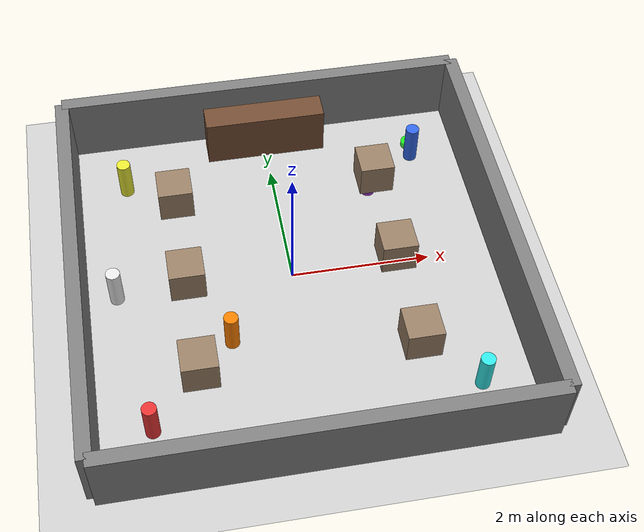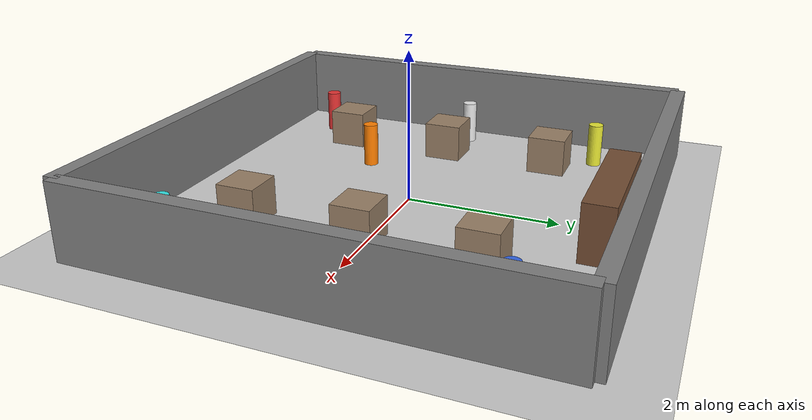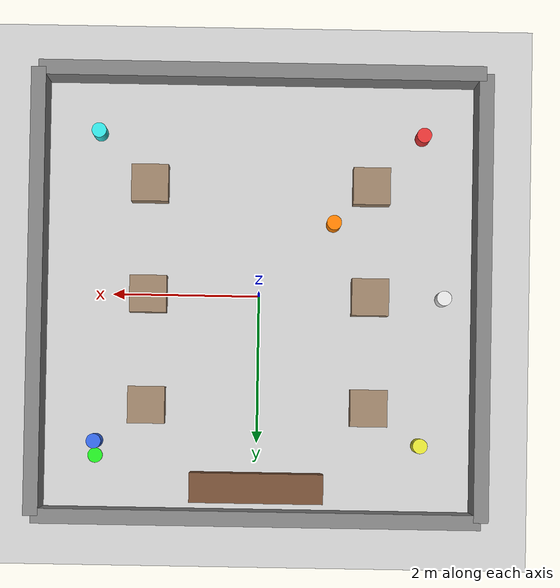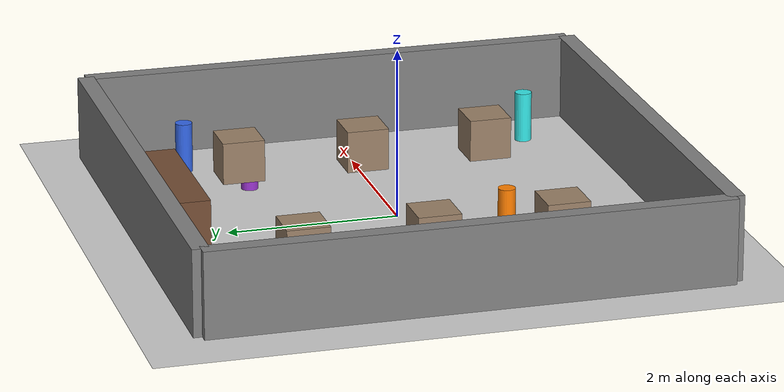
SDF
<?xml version="1.0" ?>
<sdf version="1.6">
  <world name="stage5_restaurant">
    <!-- Stage 5: Restaurant-like environment with tables and moving people -->

    <include>
      <uri>model://sun</uri>
    </include>

    <include>
      <uri>model://ground_plane</uri>
    </include>

    <physics type="ode">
      <real_time_update_rate>1000.0</real_time_update_rate>
      <max_step_size>0.002</max_step_size>
      <real_time_factor>3</real_time_factor>
      <ode>
        <solver>
          <type>quick</type>
          <iters>20</iters>
          <sor>1.3</sor>
        </solver>
        <constraints>
          <cfm>0.00001</cfm>
          <erp>0.2</erp>
          <contact_max_correcting_vel>2000.000000</contact_max_correcting_vel>
          <contact_surface_layer>0.01000</contact_surface_layer>
        </constraints>
      </ode>
    </physics>

    <scene>
      <ambient>0.4 0.4 0.4 1</ambient>
      <background>0.7 0.7 0.7 1</background>
      <shadows>false</shadows>
    </scene>

    <gui fullscreen='0'>
      <camera name='user_camera'>
        <pose>0 -10 9 0 0.7 1.57</pose>
        <view_controller>orbit</view_controller>
      </camera>
    </gui>

    <!-- BOUNDED ARENA: 6x6 meter box made of walls -->

    <model name="wall_north">
      <static>true</static>
      <pose>0 3 0.5 0 0 0</pose>
      <link name="link">
        <collision name="collision">
          <geometry>
            <box>
              <size>6 0.2 1</size>
            </box>
          </geometry>
        </collision>
        <visual name="visual">
          <geometry>
            <box>
              <size>6 0.2 1</size>
            </box>
          </geometry>
          <material>
            <ambient>0.5 0.5 0.5 1</ambient>
            <diffuse>0.5 0.5 0.5 1</diffuse>
          </material>
        </visual>
      </link>
    </model>

    <model name="wall_south">
      <static>true</static>
      <pose>0 -3 0.5 0 0 0</pose>
      <link name="link">
        <collision name="collision">
          <geometry>
            <box>
              <size>6 0.2 1</size>
            </box>
          </geometry>
        </collision>
        <visual name="visual">
          <geometry>
            <box>
              <size>6 0.2 1</size>
            </box>
          </geometry>
          <material>
            <ambient>0.5 0.5 0.5 1</ambient>
            <diffuse>0.5 0.5 0.5 1</diffuse>
          </material>
        </visual>
      </link>
    </model>

    <model name="wall_east">
      <static>true</static>
      <pose>3 0 0.5 0 0 0</pose>
      <link name="link">
        <collision name="collision">
          <geometry>
            <box>
              <size>0.2 6 1</size>
            </box>
          </geometry>
        </collision>
        <visual name="visual">
          <geometry>
            <box>
              <size>0.2 6 1</size>
            </box>
          </geometry>
          <material>
            <ambient>0.5 0.5 0.5 1</ambient>
            <diffuse>0.5 0.5 0.5 1</diffuse>
          </material>
        </visual>
      </link>
    </model>

    <model name="wall_west">
      <static>true</static>
      <pose>-3 0 0.5 0 0 0</pose>
      <link name="link">
        <collision name="collision">
          <geometry>
            <box>
              <size>0.2 6 1</size>
            </box>
          </geometry>
        </collision>
        <visual name="visual">
          <geometry>
            <box>
              <size>0.2 6 1</size>
            </box>
          </geometry>
          <material>
            <ambient>0.5 0.5 0.5 1</ambient>
            <diffuse>0.5 0.5 0.5 1</diffuse>
          </material>
        </visual>
      </link>
    </model>

    <!-- TABLES: static obstacles placed to create aisles -->

    <model name="table_1">
      <static>true</static>
      <pose>-1.5 -1.5 0.375 0 0 0</pose>
      <link name="link">
        <collision name="collision">
          <geometry>
            <box>
              <size>0.5 0.5 0.5</size>
            </box>
          </geometry>
        </collision>
        <visual name="visual">
          <geometry>
            <box>
              <size>0.5 0.5 0.5</size>
            </box>
          </geometry>
          <material>
            <ambient>0.6 0.5 0.4 1</ambient>
            <diffuse>0.6 0.5 0.4 1</diffuse>
          </material>
        </visual>
      </link>
    </model>

    <model name="table_2">
      <static>true</static>
      <pose>1.5 -1.5 0.375 0 0 0</pose>
      <link name="link">
        <collision name="collision">
          <geometry>
            <box>
              <size>0.5 0.5 0.5</size>
            </box>
          </geometry>
        </collision>
        <visual name="visual">
          <geometry>
            <box>
              <size>0.5 0.5 0.5</size>
            </box>
          </geometry>
          <material>
            <ambient>0.6 0.5 0.4 1</ambient>
            <diffuse>0.6 0.5 0.4 1</diffuse>
          </material>
        </visual>
      </link>
    </model>

    <model name="table_3">
      <static>true</static>
      <pose>-1.5 0 0.375 0 0 0</pose>
      <link name="link">
        <collision name="collision">
          <geometry>
            <box>
              <size>0.5 0.5 0.5</size>
            </box>
          </geometry>
        </collision>
        <visual name="visual">
          <geometry>
            <box>
              <size>0.5 0.5 0.5</size>
            </box>
          </geometry>
          <material>
            <ambient>0.6 0.5 0.4 1</ambient>
            <diffuse>0.6 0.5 0.4 1</diffuse>
          </material>
        </visual>
      </link>
    </model>

    <model name="table_4">
      <static>true</static>
      <pose>1.5 0 0.375 0 0 0</pose>
      <link name="link">
        <collision name="collision">
          <geometry>
            <box>
              <size>0.5 0.5 0.5</size>
            </box>
          </geometry>
        </collision>
        <visual name="visual">
          <geometry>
            <box>
              <size>0.5 0.5 0.5</size>
            </box>
          </geometry>
          <material>
            <ambient>0.6 0.5 0.4 1</ambient>
            <diffuse>0.6 0.5 0.4 1</diffuse>
          </material>
        </visual>
      </link>
    </model>

    <model name="table_5">
      <static>true</static>
      <pose>-1.5 1.5 0.375 0 0 0</pose>
      <link name="link">
        <collision name="collision">
          <geometry>
            <box>
              <size>0.5 0.5 0.5</size>
            </box>
          </geometry>
        </collision>
        <visual name="visual">
          <geometry>
            <box>
              <size>0.5 0.5 0.5</size>
            </box>
          </geometry>
          <material>
            <ambient>0.6 0.5 0.4 1</ambient>
            <diffuse>0.6 0.5 0.4 1</diffuse>
          </material>
        </visual>
      </link>
    </model>

    <model name="table_6">
      <static>true</static>
      <pose>1.5 1.5 0.375 0 0 0</pose>
      <link name="link">
        <collision name="collision">
          <geometry>
            <box>
              <size>0.5 0.5 0.5</size>
            </box>
          </geometry>
        </collision>
        <visual name="visual">
          <geometry>
            <box>
              <size>0.5 0.5 0.5</size>
            </box>
          </geometry>
          <material>
            <ambient>0.6 0.5 0.4 1</ambient>
            <diffuse>0.6 0.5 0.4 1</diffuse>
          </material>
        </visual>
      </link>
    </model>

    <!-- BAR TABLE: Rectangle adjacent to north wall -->
    <model name="bar_table">
      <static>true</static>
      <pose>0 2.6 0.375 0 0 0</pose>
      <link name="link">
        <collision name="collision">
          <geometry>
            <box>
              <size>1.8 0.4 0.75</size>
            </box>
          </geometry>
        </collision>
        <visual name="visual">
          <geometry>
            <box>
              <size>1.8 0.4 0.75</size>
            </box>
          </geometry>
          <material>
            <ambient>0.45 0.3 0.2 1</ambient>
            <diffuse>0.45 0.3 0.2 1</diffuse>
          </material>
        </visual>
      </link>
    </model>

    <!-- Goal Marker -->
    <model name="goal_marker">
      <static>false</static>
      <pose>2.2 2.2 0.1 0 0 0</pose>
      <link name="link">
        <gravity>false</gravity>
        <kinematic>true</kinematic>
        <collision name="collision">
          <laser_retro>0</laser_retro>
          <max_contacts>0</max_contacts>
          <geometry>
            <cylinder>
              <radius>0.1</radius>
              <length>0.1</length>
            </cylinder>
          </geometry>
          <surface>
            <contact>
              <collide_without_contact>true</collide_without_contact>
            </contact>
          </surface>
        </collision>
        <visual name="visual">
          <geometry>
            <cylinder>
              <radius>0.1</radius>
              <length>0.1</length>
            </cylinder>
          </geometry>
          <material>
            <ambient>0 1 0 0.8</ambient>
            <diffuse>0 1 0 0.8</diffuse>
            <specular>0 1 0 1</specular>
            <emissive>0 0.5 0 1</emissive>
          </material>
        </visual>
      </link>
    </model>

    <!-- MOVING OBSTACLES: cylinders moved by external ROS node -->

    <model name="moving_obstacle_1">
      <static>false</static>
      <pose>-1.0 -1.0 0.3 0 0 0</pose>
      <link name="link">
        <gravity>false</gravity>
        <kinematic>true</kinematic>
        <collision name="collision">
          <geometry>
            <cylinder>
              <radius>0.1</radius>
              <length>0.6</length>
            </cylinder>
          </geometry>
        </collision>
        <visual name="visual">
          <geometry>
            <cylinder>
              <radius>0.1</radius>
              <length>0.6</length>
            </cylinder>
          </geometry>
          <material>
            <ambient>1 0.5 0 1</ambient>
            <diffuse>1 0.5 0 1</diffuse>
          </material>
        </visual>
      </link>
    </model>

    <model name="moving_obstacle_2">
      <static>false</static>
      <pose>1.4 1.4 0.3 0 0 0</pose>
      <link name="link">
        <gravity>false</gravity>
        <kinematic>true</kinematic>
        <collision name="collision">
          <geometry>
            <cylinder>
              <radius>0.1</radius>
              <length>0.6</length>
            </cylinder>
          </geometry>
        </collision>
        <visual name="visual">
          <geometry>
            <cylinder>
              <radius>0.1</radius>
              <length>0.6</length>
            </cylinder>
          </geometry>
          <material>
            <ambient>0.6 0.2 0.8 1</ambient>
            <diffuse>0.6 0.2 0.8 1</diffuse>
          </material>
        </visual>
      </link>
    </model>

    <!-- Moving Cylinder 3: Red - circumnavigates tables clockwise -->
    <model name="moving_obstacle_3">
      <static>false</static>
      <pose>-2.2 -2.2 0.3 0 0 0</pose>
      <link name="link">
        <gravity>false</gravity>
        <kinematic>true</kinematic>
        <collision name="collision">
          <geometry>
            <cylinder>
              <radius>0.1</radius>
              <length>0.6</length>
            </cylinder>
          </geometry>
        </collision>
        <visual name="visual">
          <geometry>
            <cylinder>
              <radius>0.1</radius>
              <length>0.6</length>
            </cylinder>
          </geometry>
          <material>
            <ambient>0.9 0.2 0.2 1</ambient>
            <diffuse>0.9 0.2 0.2 1</diffuse>
          </material>
        </visual>
      </link>
    </model>

    <!-- Moving Cylinder 4: Blue - circumnavigates tables counter-clockwise -->
    <model name="moving_obstacle_4">
      <static>false</static>
      <pose>2.2 2.0 0.3 0 0 0</pose>
      <link name="link">
        <gravity>false</gravity>
        <kinematic>true</kinematic>
        <collision name="collision">
          <geometry>
            <cylinder>
              <radius>0.1</radius>
              <length>0.6</length>
            </cylinder>
          </geometry>
        </collision>
        <visual name="visual">
          <geometry>
            <cylinder>
              <radius>0.1</radius>
              <length>0.6</length>
            </cylinder>
          </geometry>
          <material>
            <ambient>0.2 0.4 0.9 1</ambient>
            <diffuse>0.2 0.4 0.9 1</diffuse>
          </material>
        </visual>
      </link>
    </model>

    <!-- Moving Cylinder 5: Yellow - circumnavigates tables clockwise from west corner -->
    <model name="moving_obstacle_5">
      <static>false</static>
      <pose>-2.2 2.0 0.3 0 0 0</pose>
      <link name="link">
        <gravity>false</gravity>
        <kinematic>true</kinematic>
        <collision name="collision">
          <geometry>
            <cylinder>
              <radius>0.1</radius>
              <length>0.6</length>
            </cylinder>
          </geometry>
        </collision>
        <visual name="visual">
          <geometry>
            <cylinder>
              <radius>0.1</radius>
              <length>0.6</length>
            </cylinder>
          </geometry>
          <material>
            <ambient>0.9 0.9 0.2 1</ambient>
            <diffuse>0.9 0.9 0.2 1</diffuse>
          </material>
        </visual>
      </link>
    </model>

    <!-- Moving Cylinder 6: Cyan - circumnavigates tables counter-clockwise from south corner -->
    <model name="moving_obstacle_6">
      <static>false</static>
      <pose>2.2 -2.2 0.3 0 0 0</pose>
      <link name="link">
        <gravity>false</gravity>
        <kinematic>true</kinematic>
        <collision name="collision">
          <geometry>
            <cylinder>
              <radius>0.1</radius>
              <length>0.6</length>
            </cylinder>
          </geometry>
        </collision>
        <visual name="visual">
          <geometry>
            <cylinder>
              <radius>0.1</radius>
              <length>0.6</length>
            </cylinder>
          </geometry>
          <material>
            <ambient>0.2 0.9 0.9 1</ambient>
            <diffuse>0.2 0.9 0.9 1</diffuse>
          </material>
        </visual>
      </link>
    </model>

    <!-- Moving Cylinder 7: White - moves horizontally in middle lane -->
    <model name="moving_obstacle_7">
      <static>false</static>
      <pose>-2.5 0.0 0.3 0 0 0</pose>
      <link name="link">
        <gravity>false</gravity>
        <kinematic>true</kinematic>
        <collision name="collision">
          <geometry>
            <cylinder>
              <radius>0.1</radius>
              <length>0.6</length>
            </cylinder>
          </geometry>
        </collision>
        <visual name="visual">
          <geometry>
            <cylinder>
              <radius>0.1</radius>
              <length>0.6</length>
            </cylinder>
          </geometry>
          <material>
            <ambient>0.9 0.9 0.9 1</ambient>
            <diffuse>0.9 0.9 0.9 1</diffuse>
          </material>
        </visual>
      </link>
    </model>

  </world>
</sdf>
